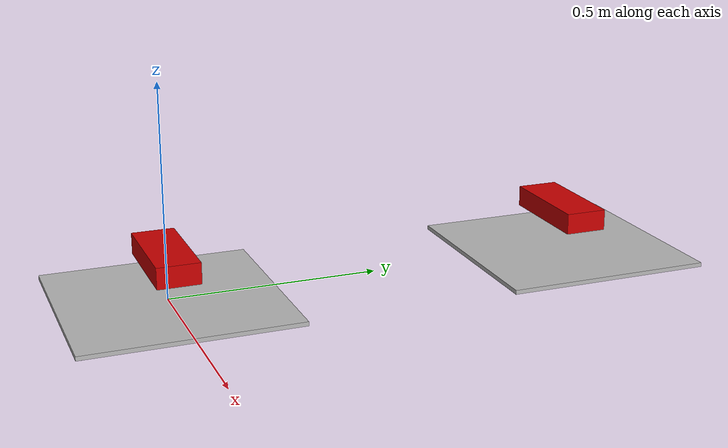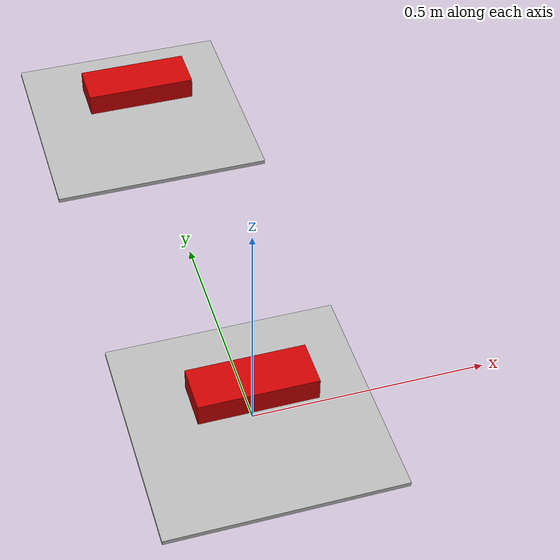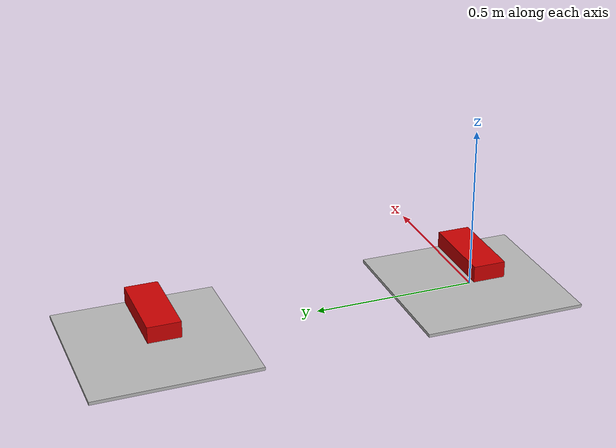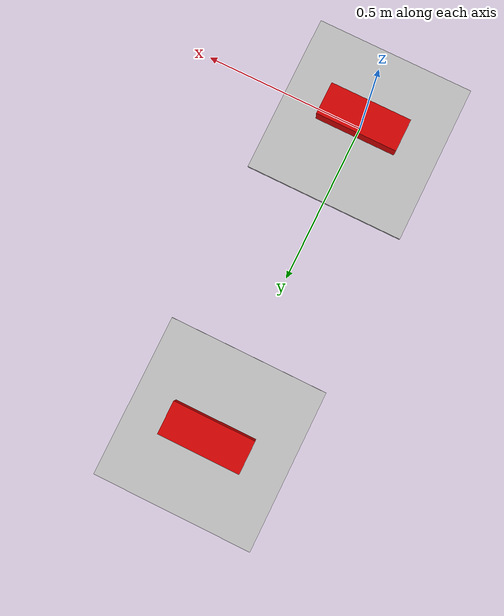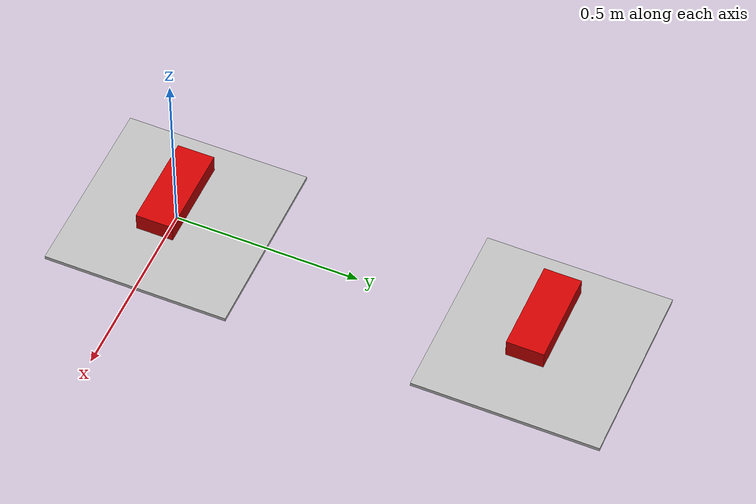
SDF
<?xml version="1.0"?>
<sdf version="1.6">
    <world name="default">
        <light type="directional" name="sun">
            <cast_shadows>true</cast_shadows>
            <pose>0 0 10 0 0 0</pose>
            <diffuse>1 1 1 1</diffuse>
            <specular>0.5 0.5 0.5 1</specular>
            <attenuation>
                <range>1000</range>
                <constant>0.9</constant>
                <linear>0.01</linear>
                <quadratic>0.001</quadratic>
            </attenuation>
            <direction>-0.5 0.1 -0.9</direction>
        </light>
        <model name="joint_controller_velocity">
            <pose>0 1 0 0 0 0</pose>
            <link name="base_link">
                <pose>0.0 0.0 0.0 0 0 0</pose>
                <inertial>
                    <inertia>
                        <ixx>2.501</ixx>
                        <ixy>0</ixy>
                        <ixz>0</ixz>
                        <iyy>2.501</iyy>
                        <iyz>0</iyz>
                        <izz>5</izz>
                    </inertia>
                    <mass>120.0</mass>
                </inertial>
                <visual name="base_visual">
                    <pose>0.0 0.0 0.0 0 0 0</pose>
                    <geometry>
                        <box>
                            <size>0.5 0.5 0.01</size>
                        </box>
                    </geometry>
                </visual>
                <collision name="base_collision">
                    <pose>0.0 0.0 0.0 0 0 0</pose>
                    <geometry>
                        <box>
                            <size>0.5 0.5 0.01</size>
                        </box>
                    </geometry>
                </collision>
            </link>
            <link name="rotor">
                <pose>0.0 0.0 0.1 0 0 0</pose>
                <inertial>
                    <inertia>
                        <ixx>0.032</ixx>
                        <ixy>0</ixy>
                        <ixz>0</ixz>
                        <iyy>0.032</iyy>
                        <iyz>0</iyz>
                        <izz>0.00012</izz>
                    </inertia>
                    <mass>0.6</mass>
                </inertial>
                <visual name="visual">
                    <geometry>
                        <box>
                            <size>0.25 0.1 0.05</size>
                        </box>
                    </geometry>
                    <material>
                        <ambient>0.2 0.8 0.2 1</ambient>
                        <diffuse>0.8 0 0 1</diffuse>
                    </material>
                </visual>
                <collision name="collision">
                    <geometry>
                        <box>
                            <size>0.25 0.1 0.05</size>
                        </box>
                    </geometry>
                </collision>
            </link>

            <joint name="world_fixed" type="fixed">
                <parent>world</parent>
                <child>base_link</child>
            </joint>

            <joint name="j1" type="revolute">
                <pose>0 0 -0.5 0 0 0</pose>
                <parent>base_link</parent>
                <child>rotor</child>
                <axis>
                    <xyz>0 0 1</xyz>
                </axis>
            </joint>

            <plugin
                filename="gz-sim-joint-controller-system"
                name="gz::sim::systems::JointController">
                <joint_name>j1</joint_name>
                <initial_velocity>1.0</initial_velocity>
                <topic>velocity_topic</topic>
            </plugin>
            <plugin
                filename="gz-sim-joint-state-publisher-system"
                name="gz::sim::systems::JointStatePublisher">
                <joint_name>j1</joint_name>
                <topic>velocity_j1_state</topic>
            </plugin>
        </model>

        <model name="joint_controller_force">
            <pose>0 0 0 0 0 0</pose>
            <link name="base_link">
                <pose>0.0 0.0 0.0 0 0 0</pose>
                <inertial>
                    <inertia>
                        <ixx>2.501</ixx>
                        <ixy>0</ixy>
                        <ixz>0</ixz>
                        <iyy>2.501</iyy>
                        <iyz>0</iyz>
                        <izz>5</izz>
                    </inertia>
                    <mass>120.0</mass>
                </inertial>
                <visual name="base_visual">
                    <pose>0.0 0.0 0.0 0 0 0</pose>
                    <geometry>
                        <box>
                            <size>0.5 0.5 0.01</size>
                        </box>
                    </geometry>
                </visual>
                <collision name="base_collision">
                    <pose>0.0 0.0 0.0 0 0 0</pose>
                    <geometry>
                        <box>
                            <size>0.5 0.5 0.01</size>
                        </box>
                    </geometry>
                </collision>
            </link>
            <link name="rotor">
                <pose>0.0 0.0 0.1 0 0 0</pose>
                <inertial>
                    <inertia>
                        <ixx>0.032</ixx>
                        <ixy>0</ixy>
                        <ixz>0</ixz>
                        <iyy>0.032</iyy>
                        <iyz>0</iyz>
                        <izz>0.00012</izz>
                    </inertia>
                    <mass>0.6</mass>
                </inertial>
                <visual name="visual">
                    <geometry>
                        <box>
                            <size>0.25 0.1 0.05</size>
                        </box>
                    </geometry>
                    <material>
                        <ambient>0.2 0.8 0.2 1</ambient>
                        <diffuse>0.8 0 0 1</diffuse>
                    </material>
                </visual>
                <collision name="collision">
                    <geometry>
                        <box>
                            <size>0.25 0.1 0.05</size>
                        </box>
                    </geometry>
                </collision>
            </link>

            <joint name="world_fixed" type="fixed">
                <parent>world</parent>
                <child>base_link</child>
            </joint>

            <joint name="j1" type="revolute">
                <pose>0 0 -0.5 0 0 0</pose>
                <parent>base_link</parent>
                <child>rotor</child>
                <axis>
                    <xyz>0 0 1</xyz>
                </axis>
            </joint>

            <plugin
                filename="gz-sim-joint-controller-system"
                name="gz::sim::systems::JointController">
                <joint_name>j1</joint_name>
                <use_force_commands>true</use_force_commands>
                <topic>force_topic</topic>
                <p_gain>0.2</p_gain>
                <i_gain>0.01</i_gain>
            </plugin>
            <plugin
                filename="gz-sim-joint-state-publisher-system"
                name="gz::sim::systems::JointStatePublisher">
                <joint_name>j1</joint_name>
                <topic>force_j1_state</topic>
            </plugin>
        </model>
    </world>
</sdf>
